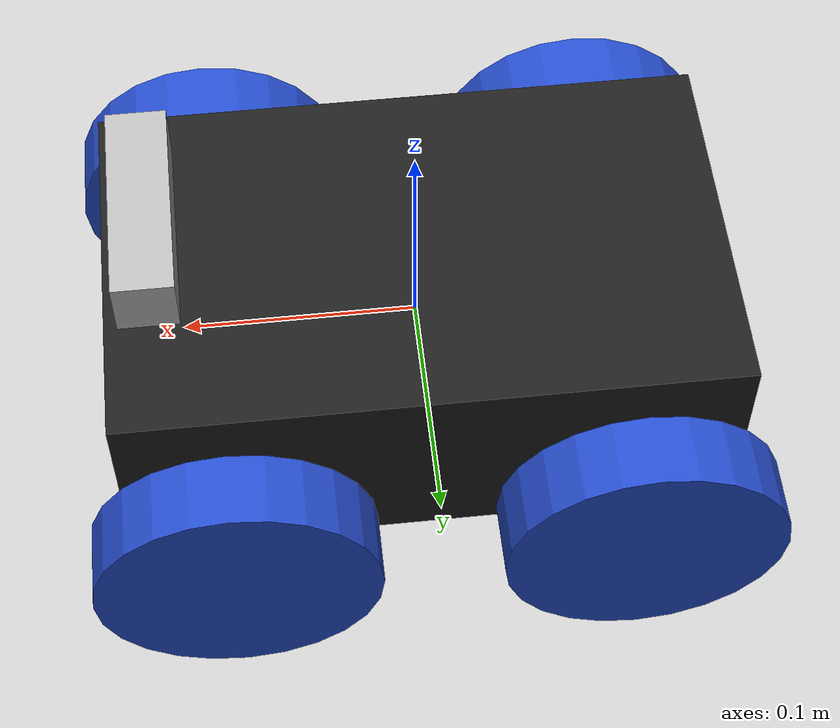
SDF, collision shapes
<?xml version='1.0'?>
<sdf version='1.6'>
  <model name='shamir_and_realsense'>
    <link name='m2wr_with_rs::link_chassis'>
      <pose frame=''>0 0 0 0 -0 0</pose>
      <inertial>
        <pose frame=''>0 0 0.1 0 -0 0</pose>
        <mass>1.27</mass>
        <inertia>
          <ixx>0.0080696</ixx>
          <ixy>0</ixy>
          <ixz>0</ixz>
          <iyy>0.00986333</iyy>
          <iyz>0</iyz>
          <izz>0.00362433</izz>
        </inertia>
      </inertial>
      <gravity>1</gravity>
      <velocity_decay/>
      <self_collide>0</self_collide>
      <enable_wind>0</enable_wind>
      <kinematic>0</kinematic>
      <visual name='link_chassis_visual'>
        <pose frame=''>0 0 0 0 -0 0</pose>
        <geometry>
          <box>
            <size>0.26 0.16 0.093</size>
          </box>
        </geometry>
        <material>
          <script>
            <name>Gazebo/Black</name>
            <uri>file://media/materials/scripts/gazebo.material</uri>
          </script>
          <emissive>0 0 0 1</emissive>
          <shader type='vertex'>
            <normal_map>__default__</normal_map>
          </shader>
        </material>
        <transparency>0</transparency>
        <cast_shadows>1</cast_shadows>
      </visual>
      <collision name='link_chassis_fixed_joint_lump__collision_chassis_collision'>
        <laser_retro>0</laser_retro>
        <max_contacts>10</max_contacts>
        <pose frame=''>0 0 0 0 -0 0</pose>
        <geometry>
          <box>
            <size>0.26 0.16 0.093</size>
          </box>
        </geometry>
        <surface>
          <friction>
            <ode>
              <mu>1</mu>
              <mu2>1</mu2>
              <fdir1>0 0 0</fdir1>
              <slip1>0</slip1>
              <slip2>0</slip2>
            </ode>
            <torsional>
              <coefficient>1</coefficient>
              <patch_radius>0</patch_radius>
              <surface_radius>0</surface_radius>
              <use_patch_radius>1</use_patch_radius>
              <ode>
                <slip>0</slip>
              </ode>
            </torsional>
          </friction>
          <bounce>
            <restitution_coefficient>0</restitution_coefficient>
            <threshold>1e+06</threshold>
          </bounce>
          <contact>
            <collide_without_contact>0</collide_without_contact>
            <collide_without_contact_bitmask>1</collide_without_contact_bitmask>
            <collide_bitmask>1</collide_bitmask>
            <ode>
              <soft_cfm>0</soft_cfm>
              <soft_erp>0.2</soft_erp>
              <kp>1e+06</kp>
              <kd>1</kd>
              <max_vel>1</max_vel>
              <min_depth>0</min_depth>
            </ode>
            <bullet>
              <split_impulse>1</split_impulse>
              <split_impulse_penetration_threshold>-0.01</split_impulse_penetration_threshold>
              <soft_cfm>0</soft_cfm>
              <soft_erp>0.2</soft_erp>
              <kp>1e+06</kp>
              <kd>1</kd>
            </bullet>
          </contact>
        </surface>
      </collision>
    </link>
    <link name='m2wr_with_rs::link_left_wheel'>
      <pose frame=''>-0.085 -0.1025 -0.0256 0 -0 0</pose>
      <inertial>
        <pose frame=''>0 0 -0 -0 1.5707 1.5707</pose>
        <mass>0.01</mass>
        <inertia>
          <ixx>0.000526667</ixx>
          <ixy>0</ixy>
          <ixz>0</ixz>
          <iyy>0.000526667</iyy>
          <iyz>0</iyz>
          <izz>0.001</izz>
        </inertia>
      </inertial>
      <gravity>1</gravity>
      <velocity_decay/>
      <self_collide>0</self_collide>
      <enable_wind>0</enable_wind>
      <kinematic>0</kinematic>
      <visual name='link_left_wheel_visual_visual'>
        <pose frame=''>0 0 -0 -3.12268 1.57079 -1.55198</pose>
        <geometry>
          <cylinder>
            <length>0.03</length>
            <radius>0.06</radius>
          </cylinder>
        </geometry>
        <material>
          <script>
            <name>Gazebo/Blue</name>
            <uri>file://media/materials/scripts/gazebo.material</uri>
          </script>
          <emissive>0 0 0 1</emissive>
        </material>
        <transparency>0</transparency>
        <cast_shadows>1</cast_shadows>
      </visual>
      <collision name='link_left_wheel_fixed_joint_lump__link_right_wheel_collision_collision'>
        <laser_retro>0</laser_retro>
        <max_contacts>10</max_contacts>
        <pose frame=''>0 0 0 3.14159 1.57079 -1.57089</pose>
        <geometry>
          <cylinder>
            <radius>0.06</radius>
            <length>0.03</length>
          </cylinder>
        </geometry>
        <surface>
          <friction>
            <ode>
              <mu>1</mu>
              <mu2>1</mu2>
              <fdir1>0 0 0</fdir1>
              <slip1>0</slip1>
              <slip2>0</slip2>
            </ode>
            <torsional>
              <coefficient>1</coefficient>
              <patch_radius>0</patch_radius>
              <surface_radius>0</surface_radius>
              <use_patch_radius>1</use_patch_radius>
              <ode>
                <slip>0</slip>
              </ode>
            </torsional>
          </friction>
          <bounce>
            <restitution_coefficient>0</restitution_coefficient>
            <threshold>1e+06</threshold>
          </bounce>
          <contact>
            <collide_without_contact>0</collide_without_contact>
            <collide_without_contact_bitmask>1</collide_without_contact_bitmask>
            <collide_bitmask>1</collide_bitmask>
            <ode>
              <soft_cfm>0</soft_cfm>
              <soft_erp>0.2</soft_erp>
              <kp>1e+06</kp>
              <kd>1</kd>
              <max_vel>5</max_vel>
              <min_depth>0</min_depth>
            </ode>
            <bullet>
              <split_impulse>1</split_impulse>
              <split_impulse_penetration_threshold>-0.01</split_impulse_penetration_threshold>
              <soft_cfm>0</soft_cfm>
              <soft_erp>0.2</soft_erp>
              <kp>1e+06</kp>
              <kd>1</kd>
            </bullet>
          </contact>
        </surface>
      </collision>
    </link>
    <link name='m2wr_with_rs::link_left_wheel_back'>
      <pose frame=''>0.085 -0.1025 -0.0256 0 -0 0</pose>
      <inertial>
        <pose frame=''>0 0 0 -0 1.5707 1.5707</pose>
        <mass>0.01</mass>
        <inertia>
          <ixx>0.00052667</ixx>
          <ixy>0</ixy>
          <ixz>0</ixz>
          <iyy>0.00052667</iyy>
          <iyz>0</iyz>
          <izz>0.001</izz>
        </inertia>
      </inertial>
      <gravity>1</gravity>
      <velocity_decay/>
      <self_collide>0</self_collide>
      <enable_wind>0</enable_wind>
      <kinematic>0</kinematic>
      <visual name='link_left_wheel_back_visual_visual'>
        <pose frame=''>0 0 0 -3.12268 1.57079 -1.55198</pose>
        <geometry>
          <cylinder>
            <length>0.03</length>
            <radius>0.06</radius>
          </cylinder>
        </geometry>
        <material>
          <script>
            <name>Gazebo/Blue</name>
            <uri>file://media/materials/scripts/gazebo.material</uri>
          </script>
          <shader type='vertex'>
            <normal_map>__default__</normal_map>
          </shader>
        </material>
        <transparency>0</transparency>
        <cast_shadows>1</cast_shadows>
      </visual>
      <collision name='link_left_wheel_back_fixed_joint_lump__link_right_wheel_collision_collision'>
        <laser_retro>0</laser_retro>
        <max_contacts>10</max_contacts>
        <pose frame=''>0 0 0 3.14159 1.57079 -1.57089</pose>
        <geometry>
          <cylinder>
            <radius>0.06</radius>
            <length>0.03</length>
          </cylinder>
        </geometry>
        <surface>
          <friction>
            <ode>
              <mu>1</mu>
              <mu2>1</mu2>
              <fdir1>0 0 0</fdir1>
              <slip1>0</slip1>
              <slip2>0</slip2>
            </ode>
            <torsional>
              <coefficient>1</coefficient>
              <patch_radius>0</patch_radius>
              <surface_radius>0</surface_radius>
              <use_patch_radius>1</use_patch_radius>
              <ode>
                <slip>0</slip>
              </ode>
            </torsional>
          </friction>
          <bounce>
            <restitution_coefficient>0</restitution_coefficient>
            <threshold>1e+06</threshold>
          </bounce>
          <contact>
            <collide_without_contact>0</collide_without_contact>
            <collide_without_contact_bitmask>1</collide_without_contact_bitmask>
            <collide_bitmask>1</collide_bitmask>
            <ode>
              <soft_cfm>0</soft_cfm>
              <soft_erp>0.2</soft_erp>
              <kp>1e+06</kp>
              <kd>1</kd>
              <max_vel>5</max_vel>
              <min_depth>0</min_depth>
            </ode>
            <bullet>
              <split_impulse>1</split_impulse>
              <split_impulse_penetration_threshold>-0.01</split_impulse_penetration_threshold>
              <soft_cfm>0</soft_cfm>
              <soft_erp>0.2</soft_erp>
              <kp>1e+06</kp>
              <kd>1</kd>
            </bullet>
          </contact>
        </surface>
      </collision>
    </link>
    <link name='m2wr_with_rs::link_right_wheel'>
      <pose frame=''>-0.085 0.1025 -0.0256 0 -0 0</pose>
      <inertial>
        <pose frame=''>0 0 -0 -0 1.5707 1.5707</pose>
        <mass>0.01</mass>
        <inertia>
          <ixx>0.000526667</ixx>
          <ixy>0</ixy>
          <ixz>0</ixz>
          <iyy>0.000526667</iyy>
          <iyz>0</iyz>
          <izz>0.001</izz>
        </inertia>
      </inertial>
      <gravity>1</gravity>
      <velocity_decay/>
      <self_collide>0</self_collide>
      <enable_wind>0</enable_wind>
      <kinematic>0</kinematic>
      <visual name='link_right_wheel_visual_visual'>
        <pose frame=''>0 0 -0 -3.12268 1.57079 -1.55198</pose>
        <geometry>
          <cylinder>
            <length>0.03</length>
            <radius>0.06</radius>
          </cylinder>
        </geometry>
        <material>
          <script>
            <name>Gazebo/Blue</name>
            <uri>file://media/materials/scripts/gazebo.material</uri>
          </script>
        </material>
        <transparency>0</transparency>
        <cast_shadows>1</cast_shadows>
      </visual>
      <collision name='link_right_wheel_collision_collision'>
        <laser_retro>0</laser_retro>
        <max_contacts>10</max_contacts>
        <pose frame=''>0 0 0 3.14159 1.57079 -1.57089</pose>
        <geometry>
          <cylinder>
            <radius>0.06</radius>
            <length>0.03</length>
          </cylinder>
        </geometry>
        <surface>
          <friction>
            <ode>
              <mu>1</mu>
              <mu2>1</mu2>
              <fdir1>0 0 0</fdir1>
              <slip1>0</slip1>
              <slip2>0</slip2>
            </ode>
            <torsional>
              <coefficient>1</coefficient>
              <patch_radius>0</patch_radius>
              <surface_radius>0</surface_radius>
              <use_patch_radius>1</use_patch_radius>
              <ode>
                <slip>0</slip>
              </ode>
            </torsional>
          </friction>
          <bounce>
            <restitution_coefficient>0</restitution_coefficient>
            <threshold>1e+06</threshold>
          </bounce>
          <contact>
            <collide_without_contact>0</collide_without_contact>
            <collide_without_contact_bitmask>1</collide_without_contact_bitmask>
            <collide_bitmask>1</collide_bitmask>
            <ode>
              <soft_cfm>0</soft_cfm>
              <soft_erp>0.2</soft_erp>
              <kp>1e+06</kp>
              <kd>1</kd>
              <max_vel>5</max_vel>
              <min_depth>0</min_depth>
            </ode>
            <bullet>
              <split_impulse>1</split_impulse>
              <split_impulse_penetration_threshold>-0.01</split_impulse_penetration_threshold>
              <soft_cfm>0</soft_cfm>
              <soft_erp>0.2</soft_erp>
              <kp>1e+06</kp>
              <kd>1</kd>
            </bullet>
          </contact>
        </surface>
      </collision>
    </link>
    <link name='m2wr_with_rs::link_right_wheel_back'>
      <pose frame=''>0.085 0.1025 -0.0256 0 -0 0</pose>
      <inertial>
        <pose frame=''>0 0 -0 -0 1.5707 1.5707</pose>
        <mass>0.01</mass>
        <inertia>
          <ixx>0.000526667</ixx>
          <ixy>0</ixy>
          <ixz>0</ixz>
          <iyy>0.000526667</iyy>
          <iyz>0</iyz>
          <izz>0.001</izz>
        </inertia>
      </inertial>
      <gravity>1</gravity>
      <velocity_decay/>
      <self_collide>0</self_collide>
      <enable_wind>0</enable_wind>
      <kinematic>0</kinematic>
      <visual name='link_right_wheel_back_visual_visual'>
        <pose frame=''>0 0 -0 -3.12268 1.57079 -1.55198</pose>
        <geometry>
          <cylinder>
            <length>0.03</length>
            <radius>0.06</radius>
          </cylinder>
        </geometry>
        <material>
          <script>
            <name>Gazebo/Blue</name>
            <uri>file://media/materials/scripts/gazebo.material</uri>
          </script>
          <emissive>0 0 0 1</emissive>
        </material>
        <transparency>0</transparency>
        <cast_shadows>1</cast_shadows>
      </visual>
      <collision name='link_right_wheel_back_fixed_joint_lump__link_right_wheel_collision_collision'>
        <laser_retro>0</laser_retro>
        <max_contacts>10</max_contacts>
        <pose frame=''>0 0 0 3.14159 1.57079 -1.57089</pose>
        <geometry>
          <cylinder>
            <radius>0.06</radius>
            <length>0.03</length>
          </cylinder>
        </geometry>
        <surface>
          <friction>
            <ode>
              <mu>1</mu>
              <mu2>1</mu2>
              <fdir1>0 0 0</fdir1>
              <slip1>0</slip1>
              <slip2>0</slip2>
            </ode>
            <torsional>
              <coefficient>1</coefficient>
              <patch_radius>0</patch_radius>
              <surface_radius>0</surface_radius>
              <use_patch_radius>1</use_patch_radius>
              <ode>
                <slip>0</slip>
              </ode>
            </torsional>
          </friction>
          <bounce>
            <restitution_coefficient>0</restitution_coefficient>
            <threshold>1e+06</threshold>
          </bounce>
          <contact>
            <collide_without_contact>0</collide_without_contact>
            <collide_without_contact_bitmask>1</collide_without_contact_bitmask>
            <collide_bitmask>1</collide_bitmask>
            <ode>
              <soft_cfm>0</soft_cfm>
              <soft_erp>0.2</soft_erp>
              <kp>1e+06</kp>
              <kd>1</kd>
              <max_vel>5</max_vel>
              <min_depth>0</min_depth>
            </ode>
            <bullet>
              <split_impulse>1</split_impulse>
              <split_impulse_penetration_threshold>-0.01</split_impulse_penetration_threshold>
              <soft_cfm>0</soft_cfm>
              <soft_erp>0.2</soft_erp>
              <kp>1e+06</kp>
              <kd>1</kd>
            </bullet>
          </contact>
        </surface>
      </collision>
    </link>
    <model name='realsense2_camera'>
      <link name='base_link'>
        <pose frame=''>0 0 0.0175 0 -0 0</pose>
        <inertial>
          <pose frame=''>0 0.0175 0.0125 0 -0 0</pose>
          <mass>0.072</mass>
          <inertia>
            <ixx>0.00388124</ixx>
            <ixy>0</ixy>
            <ixz>0</ixz>
            <iyy>0.00049894</iyy>
            <iyz>0</iyz>
            <izz>0.00387926</izz>
          </inertia>
        </inertial>
        <collision name='base_link_fixed_joint_lump__camera_link_collision'>
          <pose frame=''>0 0 0.0125 0 -0 0</pose>
          <geometry>
            <box>
              <size>0.02505 0.09 0.025</size>
            </box>
          </geometry>
          <surface>
            <contact>
              <ode>
                <kp>1e+06</kp>
                <kd>1</kd>
              </ode>
            </contact>
            <friction>
              <ode>
                <mu2>1</mu2>
                <fdir1>0 0 0</fdir1>
              </ode>
              <torsional>
                <ode/>
              </torsional>
            </friction>
            <bounce/>
          </surface>
          <max_contacts>10</max_contacts>
        </collision>
        <visual name='base_link_fixed_joint_lump__camera_link_visual'>
          <pose frame=''>0.0149 0 0.0125 1.5708 -0 1.5708</pose>
          <geometry>
            <mesh>
              <scale>1 1 1</scale>
              <uri>model://realsense_model/meshes/d435.dae</uri>
            </mesh>
          </geometry>
          <material>
            <script>
              <uri>__default__</uri>
              <name>__default__</name>
            </script>
          </material>
        </visual>
        <gravity>1</gravity>
        <velocity_decay/>
        <self_collide>0</self_collide>
        <enable_wind>0</enable_wind>
        <kinematic>0</kinematic>
        <gravity>1</gravity>
        <sensor name='cameracolor' type='camera'>
          <camera name='camera'>
            <horizontal_fov>1.21126</horizontal_fov>
            <image>
              <width>192</width>
              <height>108</height>
              <format>RGB_INT8</format>
            </image>
            <clip>
              <near>0.1</near>
              <far>100</far>
            </clip>
            <noise>
              <type>gaussian</type>
              <mean>0</mean>
              <stddev>0.007</stddev>
            </noise>
          </camera>
          <always_on>1</always_on>
          <update_rate>30</update_rate>
          <visualize>1</visualize>
          <pose frame=''>0 0.0175 0.0125 0 -0 0</pose>
        </sensor>
        <sensor name='cameraired1' type='camera'>
          <camera name='camera'>
            <horizontal_fov>1.48702</horizontal_fov>
            <image>
              <width>640</width>
              <height>480</height>
              <format>L_INT8</format>
            </image>
            <clip>
              <near>0.1</near>
              <far>100</far>
            </clip>
            <noise>
              <type>gaussian</type>
              <mean>0</mean>
              <stddev>0.005</stddev>
            </noise>
          </camera>
          <always_on>1</always_on>
          <update_rate>90</update_rate>
          <visualize>0</visualize>
          <pose frame=''>0 -0.025 0.0125 0 -0 0</pose>
        </sensor>
        <sensor name='cameraired2' type='camera'>
          <camera name='camera'>
            <horizontal_fov>1.48702</horizontal_fov>
            <image>
              <width>640</width>
              <height>480</height>
              <format>L_INT8</format>
            </image>
            <clip>
              <near>0.1</near>
              <far>100</far>
            </clip>
            <noise>
              <type>gaussian</type>
              <mean>0</mean>
              <stddev>0.005</stddev>
            </noise>
          </camera>
          <always_on>1</always_on>
          <update_rate>90</update_rate>
          <visualize>0</visualize>
          <pose frame=''>0 0.025 0.0125 0 -0 0</pose>
        </sensor>
        <sensor name='cameradepth' type='depth'>
          <camera name='camera'>
            <horizontal_fov>1.48702</horizontal_fov>
            <image>
              <width>640</width>
              <height>480</height>
            </image>
            <clip>
              <near>0.1</near>
              <far>100</far>
            </clip>
            <noise>
              <type>gaussian</type>
              <mean>0</mean>
              <stddev>0.1</stddev>
            </noise>
          </camera>
          <always_on>1</always_on>
          <update_rate>90</update_rate>
          <visualize>0</visualize>
          <pose frame=''>0 0.0175 0.0125 0 -0 0</pose>
        </sensor>
        <sensor name='imu_sensor' type='imu'>
          <always_on>1</always_on>
          <update_rate>100</update_rate>
          <visualize>1</visualize>
          <topic>__default_topic__</topic>
          <plugin name='imu_plugin' filename='libgazebo_ros_imu_sensor.so'>
            <topicName>imu</topicName>
            <bodyName>imu_link</bodyName>
            <updateRateHZ>100.0</updateRateHZ>
            <gaussianNoise>0.0</gaussianNoise>
            <xyzOffset>0 0 0</xyzOffset>
            <rpyOffset>0 0 0</rpyOffset>
            <frameName>imu_link</frameName>
            <initialOrientationAsReference>0</initialOrientationAsReference>
          </plugin>
          <imu/>
        </sensor>
      </link>
      <static>0</static>
      <plugin name='camera' filename='librealsense_gazebo_plugin.so'>
        <prefix>camera</prefix>
        <depthUpdateRate>60.0</depthUpdateRate>
        <colorUpdateRate>60.0</colorUpdateRate>
        <infraredUpdateRate>60.0</infraredUpdateRate>
        <depthTopicName>depth/image_raw</depthTopicName>
        <depthCameraInfoTopicName>depth/camera_info</depthCameraInfoTopicName>
        <colorTopicName>color/image_raw</colorTopicName>
        <colorCameraInfoTopicName>color/camera_info</colorCameraInfoTopicName>
        <infrared1TopicName>infra1/image_raw</infrared1TopicName>
        <infrared1CameraInfoTopicName>infra1/camera_info</infrared1CameraInfoTopicName>
        <infrared2TopicName>infra2/image_raw</infrared2TopicName>
        <infrared2CameraInfoTopicName>infra2/camera_info</infrared2CameraInfoTopicName>
        <colorOpticalframeName>camera_color_optical_frame</colorOpticalframeName>
        <depthOpticalframeName>camera_depth_optical_frame</depthOpticalframeName>
        <infrared1OpticalframeName>camera_left_ir_optical_frame</infrared1OpticalframeName>
        <infrared2OpticalframeName>camera_right_ir_optical_frame</infrared2OpticalframeName>
        <rangeMinDepth>0.2</rangeMinDepth>
        <rangeMaxDepth>10.0</rangeMaxDepth>
        <pointCloud>0</pointCloud>
        <pointCloudTopicName>depth/points</pointCloudTopicName>
        <pointCloudCutoff>0.5</pointCloudCutoff>
      </plugin>
      <pose frame=''>0.110409 -0.005004 0.042572 0 0 0</pose>
    </model>
    <joint name='m2wr_with_rs::joint_left_wheel' type='revolute'>
      <parent>m2wr_with_rs::link_chassis</parent>
      <child>m2wr_with_rs::link_left_wheel</child>
      <pose frame=''>0 0 0 0 -0 0</pose>
      <axis>
        <xyz>0 1 0</xyz>
        <use_parent_model_frame>1</use_parent_model_frame>
        <limit>
          <lower>-1e+16</lower>
          <upper>1e+16</upper>
          <effort>-1</effort>
          <velocity>-1</velocity>
        </limit>
        <dynamics>
          <spring_reference>0</spring_reference>
          <spring_stiffness>0</spring_stiffness>
          <damping>0</damping>
          <friction>0</friction>
        </dynamics>
      </axis>
      <physics>
        <ode>
          <limit>
            <cfm>0</cfm>
            <erp>0.2</erp>
          </limit>
          <suspension>
            <cfm>0</cfm>
            <erp>0.2</erp>
          </suspension>
        </ode>
      </physics>
    </joint>
    <joint name='m2wr_with_rs::joint_left_wheel_back' type='revolute'>
      <parent>m2wr_with_rs::link_chassis</parent>
      <child>m2wr_with_rs::link_left_wheel_back</child>
      <pose frame=''>0 0 0 0 -0 0</pose>
      <axis>
        <xyz>0 1 0</xyz>
        <use_parent_model_frame>1</use_parent_model_frame>
        <limit>
          <lower>-1e+16</lower>
          <upper>1e+16</upper>
          <effort>-1</effort>
          <velocity>-1</velocity>
        </limit>
        <dynamics>
          <spring_reference>0</spring_reference>
          <spring_stiffness>0</spring_stiffness>
          <damping>0</damping>
          <friction>0</friction>
        </dynamics>
      </axis>
      <physics>
        <ode>
          <limit>
            <cfm>0</cfm>
            <erp>0.2</erp>
          </limit>
          <suspension>
            <cfm>0</cfm>
            <erp>0.2</erp>
          </suspension>
        </ode>
      </physics>
    </joint>
    <joint name='m2wr_with_rs::joint_right_wheel' type='revolute'>
      <parent>m2wr_with_rs::link_chassis</parent>
      <child>m2wr_with_rs::link_right_wheel</child>
      <pose frame=''>0 0 0 0 -0 0</pose>
      <axis>
        <xyz>0 1 0</xyz>
        <use_parent_model_frame>1</use_parent_model_frame>
        <limit>
          <lower>-1e+16</lower>
          <upper>1e+16</upper>
          <effort>-1</effort>
          <velocity>-1</velocity>
        </limit>
        <dynamics>
          <spring_reference>0</spring_reference>
          <spring_stiffness>0</spring_stiffness>
          <damping>0</damping>
          <friction>0</friction>
        </dynamics>
      </axis>
      <physics>
        <ode>
          <limit>
            <cfm>0</cfm>
            <erp>0.2</erp>
          </limit>
          <suspension>
            <cfm>0</cfm>
            <erp>0.2</erp>
          </suspension>
        </ode>
      </physics>
    </joint>
    <joint name='m2wr_with_rs::joint_right_wheel_back' type='revolute'>
      <parent>m2wr_with_rs::link_chassis</parent>
      <child>m2wr_with_rs::link_right_wheel_back</child>
      <pose frame=''>0 0 0 0 -0 0</pose>
      <axis>
        <xyz>0 1 0</xyz>
        <use_parent_model_frame>1</use_parent_model_frame>
        <limit>
          <lower>-1e+16</lower>
          <upper>1e+16</upper>
          <effort>-1</effort>
          <velocity>-1</velocity>
        </limit>
        <dynamics>
          <spring_reference>0</spring_reference>
          <spring_stiffness>0</spring_stiffness>
          <damping>0</damping>
          <friction>0</friction>
        </dynamics>
      </axis>
      <physics>
        <ode>
          <limit>
            <cfm>0</cfm>
            <erp>0.2</erp>
          </limit>
          <suspension>
            <cfm>0</cfm>
            <erp>0.2</erp>
          </suspension>
        </ode>
      </physics>
    </joint>
    <joint name='m2wr_with_rs::link_chassis_JOINT_0' type='fixed'>
      <parent>m2wr_with_rs::link_chassis</parent>
      <child>realsense2_camera::base_link</child>
      <pose frame=''>0 0 0 0 -0 0</pose>
      <physics>
        <ode>
          <limit>
            <cfm>0</cfm>
            <erp>0.2</erp>
          </limit>
          <suspension>
            <cfm>0</cfm>
            <erp>0.2</erp>
          </suspension>
        </ode>
      </physics>
    </joint>
    <static>0</static>
    <allow_auto_disable>1</allow_auto_disable>
    <plugin name='skid_steer_drive_controller' filename='libgazebo_ros_skid_steer_drive.so'>
      <updateRate>20.0</updateRate>
      <robotNamespace>/</robotNamespace>
      <leftFrontJoint>m2wr_with_rs::joint_left_wheel</leftFrontJoint>
      <rightFrontJoint>m2wr_with_rs::joint_right_wheel</rightFrontJoint>
      <leftRearJoint>m2wr_with_rs::joint_left_wheel_back</leftRearJoint>
      <rightRearJoint>m2wr_with_rs::joint_right_wheel_back</rightRearJoint>
      <wheelSeparation>0.175</wheelSeparation>
      <wheelDiameter>0.12</wheelDiameter>
      <robotBaseFrame>m2wr_with_rs::link_chassis</robotBaseFrame>
      <torque>0.5</torque>
      <topicName>/cmd_vel</topicName>
      <broadcastTF>0</broadcastTF>
    </plugin>
  </model>
</sdf>
